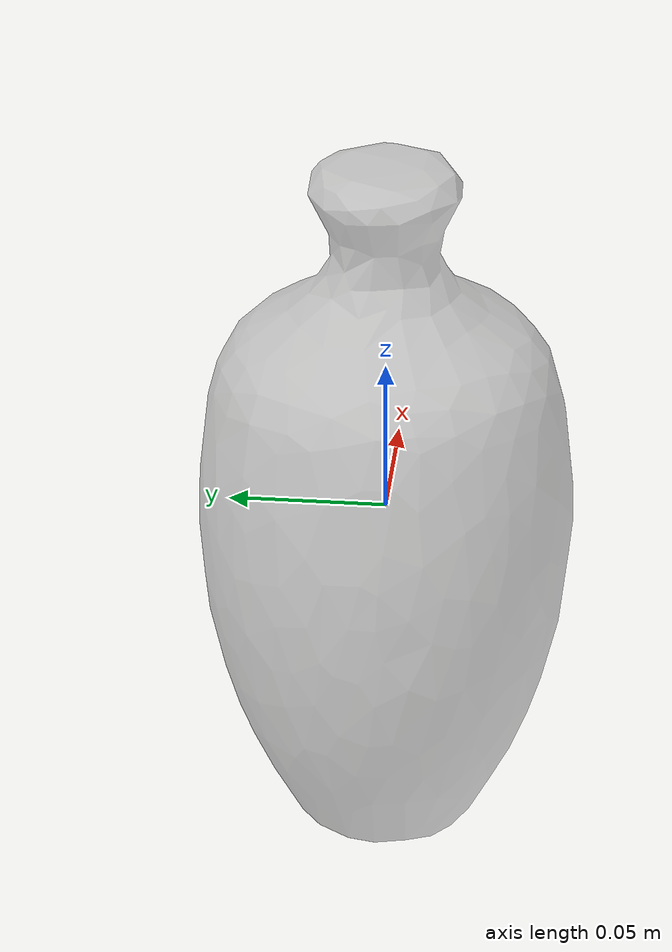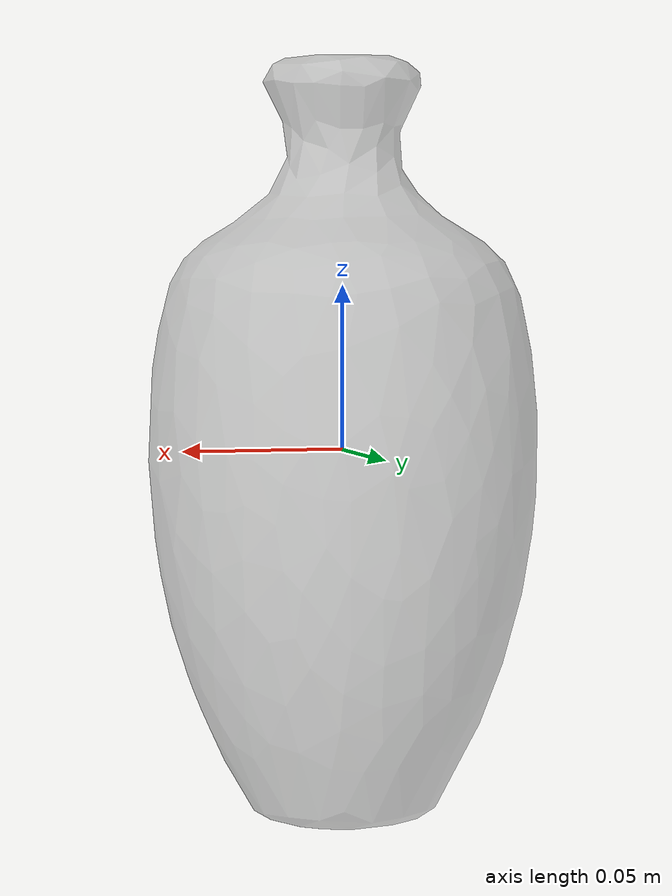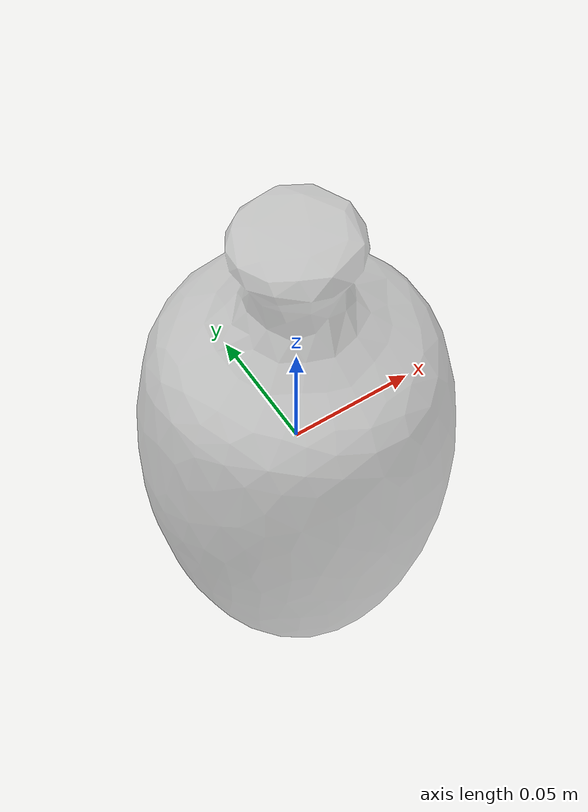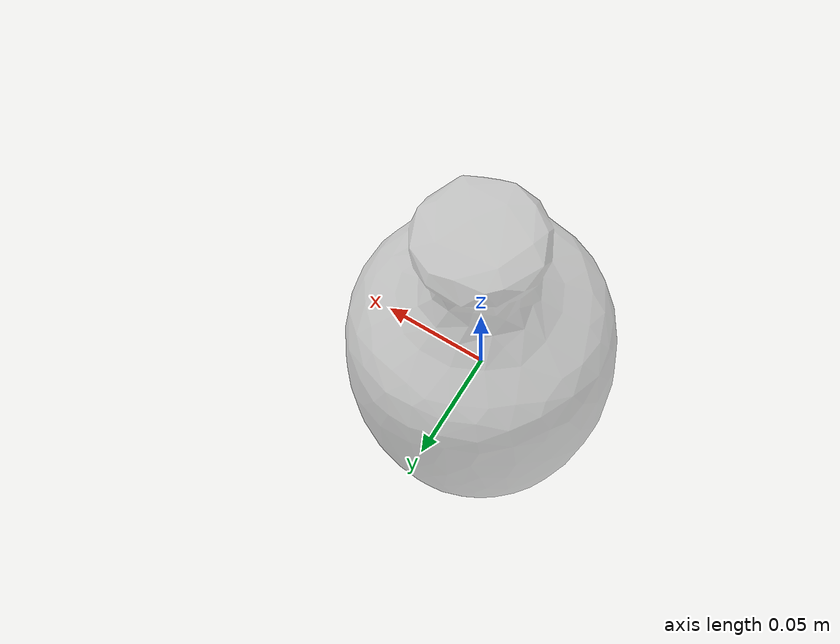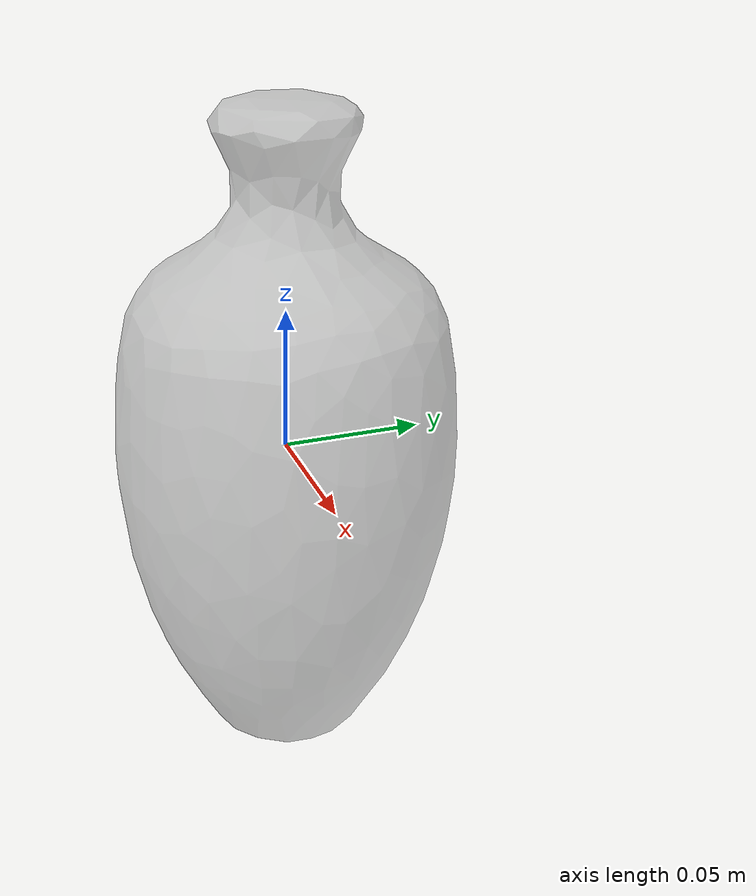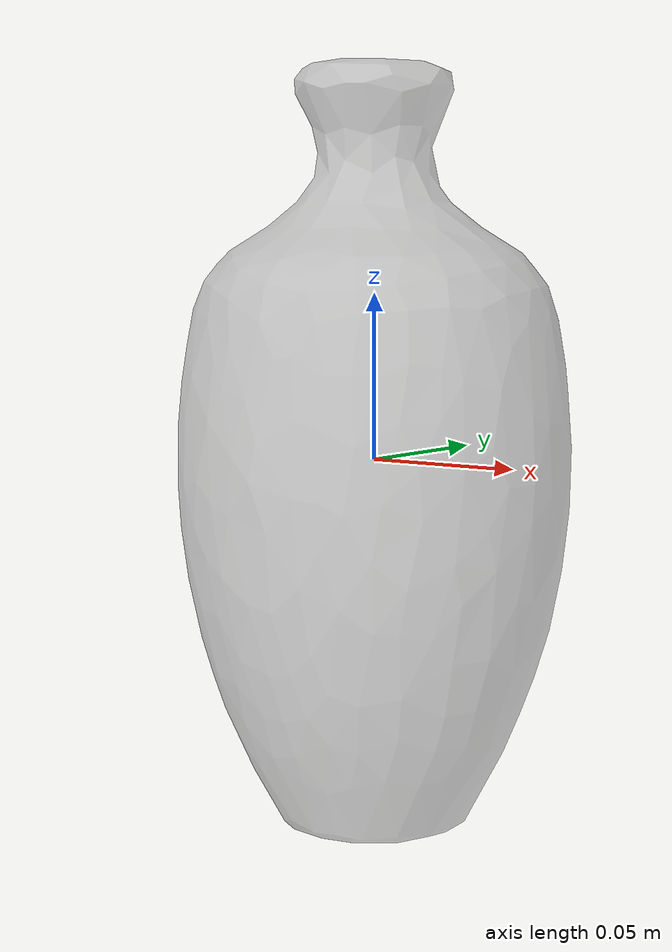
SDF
<?xml version='1.0'?>
<sdf version='1.4'>
  <model name="object">
    <link name='link'>
      <pose>0.0 0 0 0 0 0</pose>
      <inertial>
        <mass>1.578068</mass>
        <inertia>
          <ixx>0.00497011</ixx>
          <ixy>0</ixy>
          <ixz>0</ixz>
          <iyy>0.00496998</iyy>
          <iyz>0</iyz>
          <izz>0.00219259</izz>
        </inertia>
      </inertial>
      <collision name='c_jp_002'>
        <geometry>
          <mesh>
            <scale>1 1 1</scale>
            <uri>model://jar_poisson_002/mesh/jar_poisson_002.dae</uri>
          </mesh>
        </geometry>
        <surface>
          <contact>
            <ode>
              <kp>1000000</kp>
              <kd>100</kd>
              <max_vel>1000.0</max_vel>
              <min_depth>0.0</min_depth>
            </ode>
          </contact>
        </surface>
      </collision>

      <visual name='v_jp_002'>
        <geometry>
          <mesh>
            <scale>1 1 1</scale>
            <uri>model://jar_poisson_002/mesh/jar_poisson_002.dae</uri>
          </mesh>
        </geometry>
        <material>
          <script>
            <name>Gazebo/GreyTransparent</name>
            <uri>file://media/materials/scripts/gazebo.material</uri>
          </script>
        </material>
      </visual>

      <velocity_decay>
        <linear>0.0004</linear>
        <angular>0.0004</angular>
      </velocity_decay>
    </link>
  </model>
</sdf>
